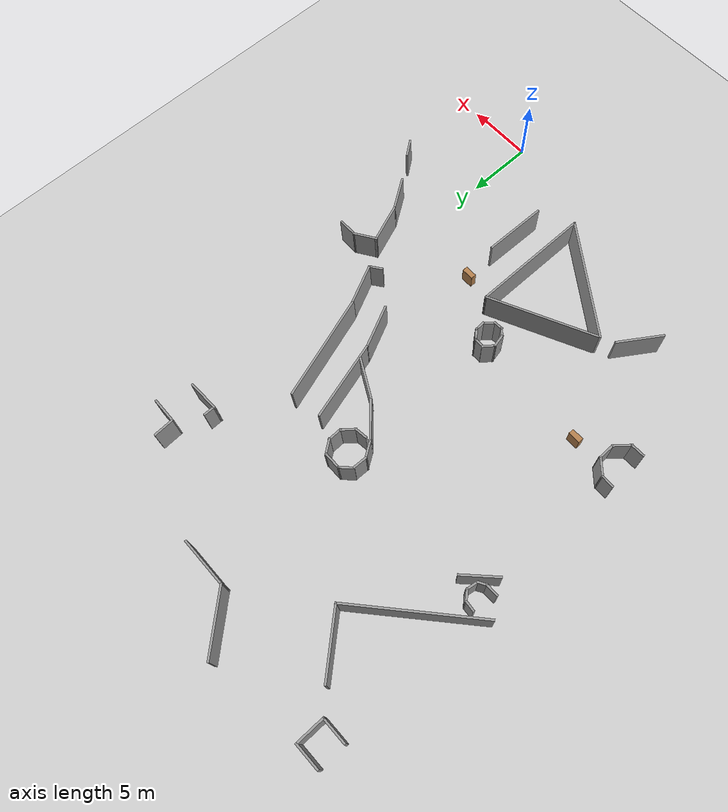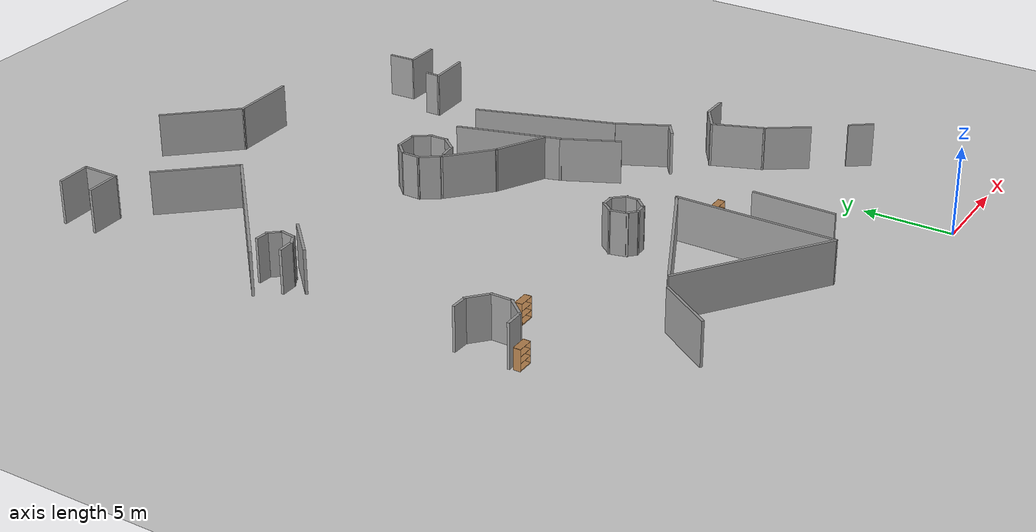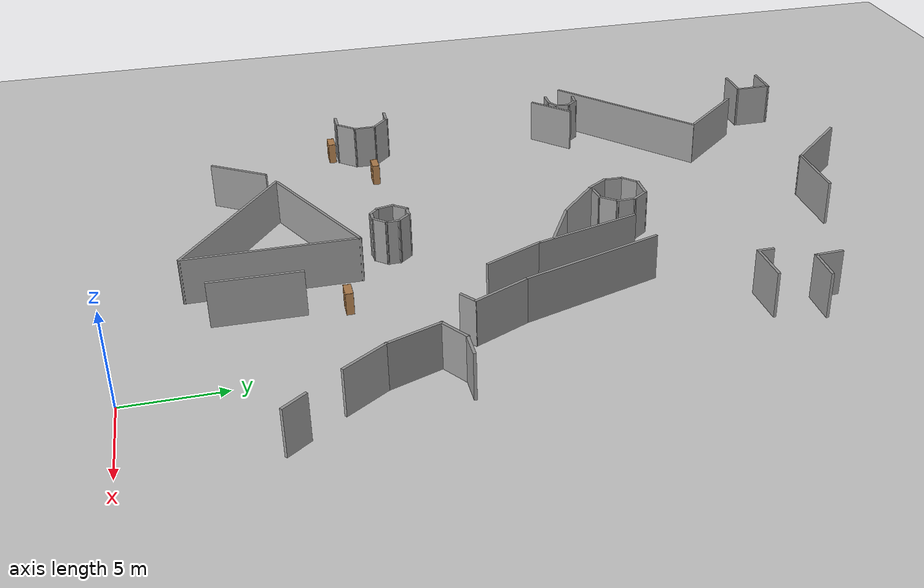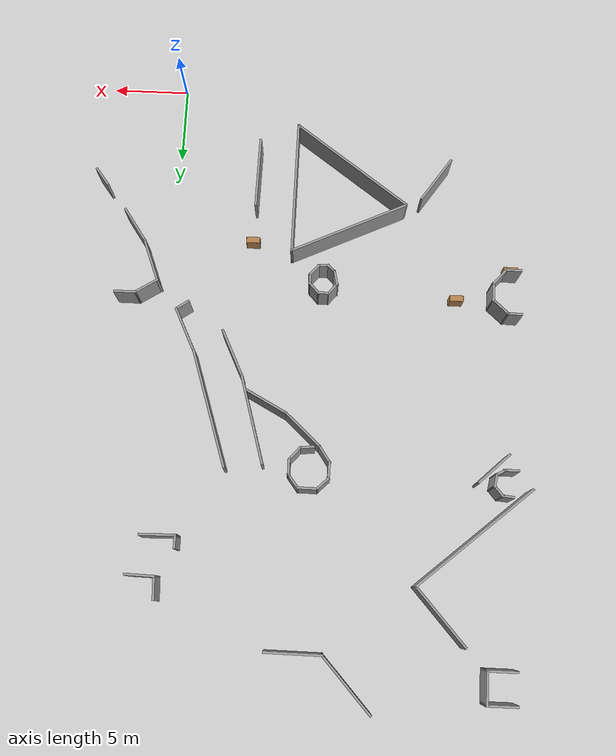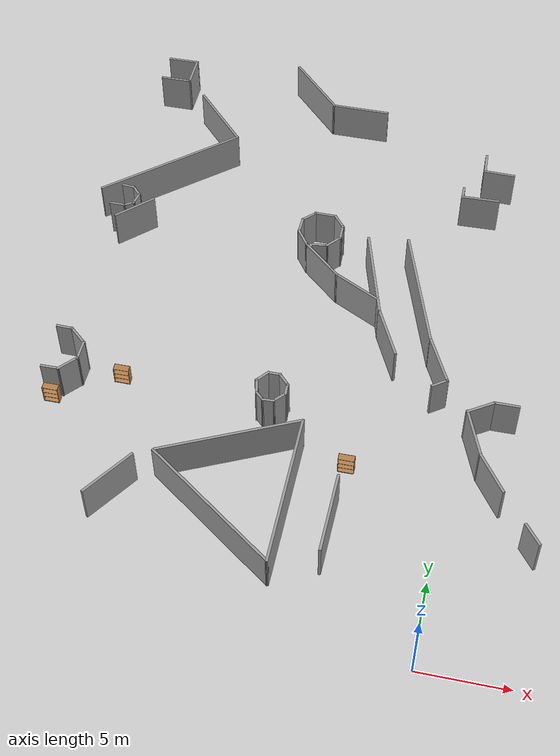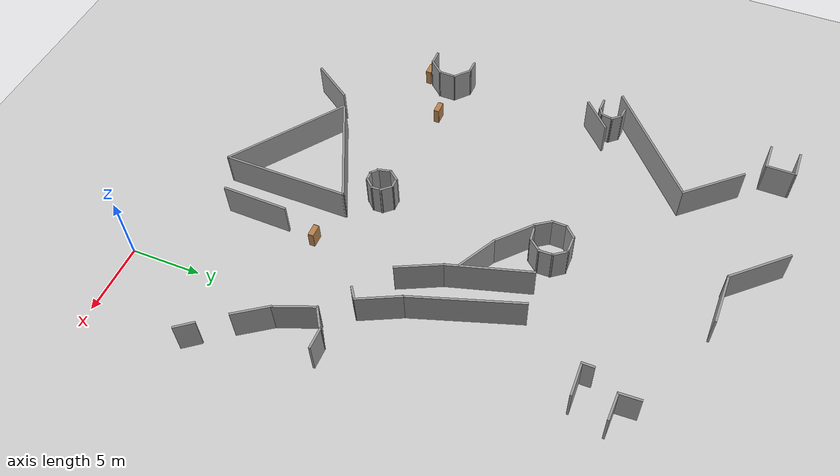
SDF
<sdf version="1.6">
 <world name="default">
  <model name="ground_plane">
   <static>1</static>
   <link name="link">
    <collision name="collision">
     <geometry><plane><normal>0 0 1</normal><size>100 100</size></plane></geometry>
     <surface><friction><ode><mu>100</mu><mu2>50</mu2></ode></friction></surface>
    </collision>
    <visual name="visual">
     <cast_shadows>0</cast_shadows>
     <geometry><plane><normal>0 0 1</normal><size>100 100</size></plane></geometry>
     <material>
      <script><uri>file://media/materials/scripts/gazebo.material</uri><name>Gazebo/Grey</name></script>
     </material>
    </visual>
   </link>
  </model>
  <model name="mall_new_reduce_size">
   <pose>-6.8092 7.5529 0 0 -0 0</pose>
   <link name="Wall_102">
    <collision name="Wall_102_Collision">
     <geometry><box><size>0.911014 0.15 2.5</size></box></geometry>
     <pose>0 0 1.25 0 -0 0</pose>
    </collision>
    <visual name="Wall_102_Visual">
     <pose>0 0 1.25 0 -0 0</pose>
     <geometry><box><size>0.911014 0.15 2.5</size></box></geometry>
     <material>
      <script><uri>file://media/materials/scripts/gazebo.material</uri><name>Gazebo/Grey</name></script>
      <ambient>1 1 1 1</ambient>
     </material>
     <meta><layer>0</layer></meta>
    </visual>
    <pose>5.13908 23.8484 0 0 -0 -1.5708</pose>
   </link>
   <link name="Wall_103">
    <collision name="Wall_103_Collision">
     <geometry><box><size>2.3915 0.15 2.5</size></box></geometry>
     <pose>0 0 1.25 0 -0 0</pose>
    </collision>
    <visual name="Wall_103_Visual">
     <pose>0 0 1.25 0 -0 0</pose>
     <geometry><box><size>2.3915 0.15 2.5</size></box></geometry>
     <material>
      <script><uri>file://media/materials/scripts/gazebo.material</uri><name>Gazebo/Grey</name></script>
      <ambient>1 1 1 1</ambient>
     </material>
     <meta><layer>0</layer></meta>
    </visual>
    <pose>6.25953 23.4864 0 0 -0 0.02316</pose>
   </link>
   <link name="Wall_126">
    <collision name="Wall_126_Collision">
     <geometry><box><size>1.5 0.15 2.5</size></box></geometry>
     <pose>0 0 1.25 0 -0 0</pose>
    </collision>
    <visual name="Wall_126_Visual">
     <pose>0 0 1.25 0 -0 0</pose>
     <geometry><box><size>1.5 0.15 2.5</size></box></geometry>
     <material>
      <script><uri>file://media/materials/scripts/gazebo.material</uri><name>Gazebo/Grey</name></script>
      <ambient>1 1 1 1</ambient>
     </material>
     <meta><layer>0</layer></meta>
    </visual>
    <pose>9.56035 7.86068 0 0 -0 3.14159</pose>
   </link>
   <link name="Wall_127">
    <collision name="Wall_127_Collision">
     <geometry><box><size>1.79669 0.15 2.5</size></box></geometry>
     <pose>0 0 1.25 0 -0 0</pose>
    </collision>
    <visual name="Wall_127_Visual">
     <pose>0 0 1.25 0 -0 0</pose>
     <geometry><box><size>1.79669 0.15 2.5</size></box></geometry>
     <material>
      <script><uri>file://media/materials/scripts/gazebo.material</uri><name>Gazebo/Grey</name></script>
      <ambient>1 1 1 1</ambient>
     </material>
     <meta><layer>0</layer></meta>
    </visual>
    <pose>8.19253 7.41582 0 0 -0 -2.57079</pose>
   </link>
   <link name="Wall_128">
    <collision name="Wall_128_Collision">
     <geometry><box><size>3.04987 0.15 2.5</size></box></geometry>
     <pose>0 0 1.25 0 -0 0</pose>
    </collision>
    <visual name="Wall_128_Visual">
     <pose>0 0 1.25 0 -0 0</pose>
     <geometry><box><size>3.04987 0.15 2.5</size></box></geometry>
     <material>
      <script><uri>file://media/materials/scripts/gazebo.material</uri><name>Gazebo/Grey</name></script>
      <ambient>1 1 1 1</ambient>
     </material>
     <meta><layer>0</layer></meta>
    </visual>
    <pose>8.01735 5.63901 0 0 -0 -1.20574</pose>
   </link>
   <link name="Wall_129">
    <collision name="Wall_129_Collision">
     <geometry><box><size>2.67124 0.15 2.5</size></box></geometry>
     <pose>0 0 1.25 0 -0 0</pose>
    </collision>
    <visual name="Wall_129_Visual">
     <pose>0 0 1.25 0 -0 0</pose>
     <geometry><box><size>2.67124 0.15 2.5</size></box></geometry>
     <material>
      <script><uri>file://media/materials/scripts/gazebo.material</uri><name>Gazebo/Grey</name></script>
      <ambient>1 1 1 1</ambient>
     </material>
     <meta><layer>0</layer></meta>
    </visual>
    <pose>9.25128 3.23607 0 0 -0 -0.966457</pose>
   </link>
   <link name="Wall_134">
    <collision name="Wall_134_Collision">
     <geometry><box><size>1.4429 0.15 2.5</size></box></geometry>
     <pose>0 0 1.25 0 -0 0</pose>
    </collision>
    <visual name="Wall_134_Visual">
     <pose>0 0 1.25 0 -0 0</pose>
     <geometry><box><size>1.4429 0.15 2.5</size></box></geometry>
     <material>
      <script><uri>file://media/materials/scripts/gazebo.material</uri><name>Gazebo/Grey</name></script>
      <ambient>1 1 1 1</ambient>
     </material>
     <meta><layer>0</layer></meta>
    </visual>
    <pose>11.7178 -0.065856 0 0 -0 -0.919284</pose>
   </link>
   <link name="Wall_245">
    <collision name="Wall_245_Collision">
     <geometry><box><size>4.70437 0.15 2.5</size></box></geometry>
     <pose>0 0 1.25 0 -0 0</pose>
    </collision>
    <visual name="Wall_245_Visual">
     <pose>0 0 1.25 0 -0 0</pose>
     <geometry><box><size>4.70437 0.15 2.5</size></box></geometry>
     <material>
      <script><uri>file://media/materials/scripts/gazebo.material</uri><name>Gazebo/Grey</name></script>
      <ambient>1 1 1 1</ambient>
     </material>
     <meta><layer>0</layer></meta>
    </visual>
    <pose>1.30808 -0.867008 0 0 -0 -1.58931</pose>
   </link>
   <link name="Wall_262">
    <collision name="Wall_262_Collision">
     <geometry><box><size>8.27755 0.15 2.5</size></box></geometry>
     <pose>0 0 1.25 0 -0 0</pose>
    </collision>
    <visual name="Wall_262_Visual">
     <pose>0 0 1.25 0 -0 0</pose>
     <geometry><box><size>8.27755 0.15 2.5</size></box></geometry>
     <material>
      <script><uri>file://media/materials/scripts/gazebo.material</uri><name>Gazebo/Grey</name></script>
      <ambient>1 1 1 1</ambient>
     </material>
     <meta><layer>0</layer></meta>
    </visual>
    <pose>-4.89745 2.80266 0 0 -0 0.439294</pose>
   </link>
   <link name="Wall_263">
    <collision name="Wall_263_Collision">
     <geometry><box><size>9.01306 0.15 2.5</size></box></geometry>
     <pose>0 0 1.25 0 -0 0</pose>
    </collision>
    <visual name="Wall_263_Visual">
     <pose>0 0 1.25 0 -0 0</pose>
     <geometry><box><size>9.01306 0.15 2.5</size></box></geometry>
     <material>
      <script><uri>file://media/materials/scripts/gazebo.material</uri><name>Gazebo/Grey</name></script>
      <ambient>1 1 1 1</ambient>
     </material>
     <meta><layer>0</layer></meta>
    </visual>
    <pose>-1.21952 0.09951 0 0 -0 -1.57583</pose>
   </link>
   <link name="Wall_264">
    <collision name="Wall_264_Collision">
     <geometry><box><size>9.26002 0.15 2.5</size></box></geometry>
     <pose>0 0 1.25 0 -0 0</pose>
    </collision>
    <visual name="Wall_264_Visual">
     <pose>0 0 1.25 0 -0 0</pose>
     <geometry><box><size>9.26002 0.15 2.5</size></box></geometry>
     <material>
      <script><uri>file://media/materials/scripts/gazebo.material</uri><name>Gazebo/Grey</name></script>
      <ambient>1 1 1 1</ambient>
     </material>
     <meta><layer>0</layer></meta>
    </visual>
    <pose>-4.95834 -1.66721 0 0 -0 2.51669</pose>
   </link>
   <link name="Wall_296">
    <collision name="Wall_296_Collision">
     <geometry><box><size>3.4822 0.15 2.5</size></box></geometry>
     <pose>0 0 1.25 0 -0 0</pose>
    </collision>
    <visual name="Wall_296_Visual">
     <pose>0 0 1.25 0 -0 0</pose>
     <geometry><box><size>3.4822 0.15 2.5</size></box></geometry>
     <material>
      <script><uri>file://media/materials/scripts/gazebo.material</uri><name>Gazebo/Grey</name></script>
      <ambient>1 1 1 1</ambient>
     </material>
     <meta><layer>0</layer></meta>
    </visual>
    <pose>-10.6311 -0.878716 0 0 -0 -2.16478</pose>
   </link>
   <link name="Wall_320">
    <collision name="Wall_320_Collision">
     <geometry><box><size>0.75 0.15 2.5</size></box></geometry>
     <pose>0 0 1.25 0 -0 0</pose>
    </collision>
    <visual name="Wall_320_Visual">
     <pose>0 0 1.25 0 -0 0</pose>
     <geometry><box><size>0.75 0.15 2.5</size></box></geometry>
     <material>
      <script><uri>file://media/materials/scripts/gazebo.material</uri><name>Gazebo/Grey</name></script>
      <ambient>1 1 1 1</ambient>
     </material>
     <meta><layer>0</layer></meta>
    </visual>
    <pose>-3.3723 7.36494 0 0 -0 0</pose>
   </link>
   <link name="Wall_321">
    <collision name="Wall_321_Collision">
     <geometry><box><size>0.996431 0.15 2.5</size></box></geometry>
     <pose>0 0 1.25 0 -0 0</pose>
    </collision>
    <visual name="Wall_321_Visual">
     <pose>0 0 1.25 0 -0 0</pose>
     <geometry><box><size>0.996431 0.15 2.5</size></box></geometry>
     <material>
      <script><uri>file://media/materials/scripts/gazebo.material</uri><name>Gazebo/Grey</name></script>
      <ambient>1 1 1 1</ambient>
     </material>
     <meta><layer>0</layer></meta>
    </visual>
    <pose>-2.78786 7.05157 0 0 -0 -0.833746</pose>
   </link>
   <link name="Wall_322">
    <collision name="Wall_322_Collision">
     <geometry><box><size>0.808487 0.15 2.5</size></box></geometry>
     <pose>0 0 1.25 0 -0 0</pose>
    </collision>
    <visual name="Wall_322_Visual">
     <pose>0 0 1.25 0 -0 0</pose>
     <geometry><box><size>0.808487 0.15 2.5</size></box></geometry>
     <material>
      <script><uri>file://media/materials/scripts/gazebo.material</uri><name>Gazebo/Grey</name></script>
      <ambient>1 1 1 1</ambient>
     </material>
     <meta><layer>0</layer></meta>
    </visual>
    <pose>-2.51788 6.42855 0 0 -0 -1.52686</pose>
   </link>
   <link name="Wall_323">
    <collision name="Wall_323_Collision">
     <geometry><box><size>0.955507 0.15 2.5</size></box></geometry>
     <pose>0 0 1.25 0 -0 0</pose>
    </collision>
    <visual name="Wall_323_Visual">
     <pose>0 0 1.25 0 -0 0</pose>
     <geometry><box><size>0.955507 0.15 2.5</size></box></geometry>
     <material>
      <script><uri>file://media/materials/scripts/gazebo.material</uri><name>Gazebo/Grey</name></script>
      <ambient>1 1 1 1</ambient>
     </material>
     <meta><layer>0</layer></meta>
    </visual>
    <pose>-2.77393 5.81089 0 0 -0 -2.30728</pose>
   </link>
   <link name="Wall_324">
    <collision name="Wall_324_Collision">
     <geometry><box><size>0.751238 0.15 2.5</size></box></geometry>
     <pose>0 0 1.25 0 -0 0</pose>
    </collision>
    <visual name="Wall_324_Visual">
     <pose>0 0 1.25 0 -0 0</pose>
     <geometry><box><size>0.751238 0.15 2.5</size></box></geometry>
     <material>
      <script><uri>file://media/materials/scripts/gazebo.material</uri><name>Gazebo/Grey</name></script>
      <ambient>1 1 1 1</ambient>
     </material>
     <meta><layer>0</layer></meta>
    </visual>
    <pose>-3.34446 5.48841 0 0 -0 -3.09342</pose>
   </link>
   <link name="Wall_325">
    <collision name="Wall_325_Collision">
     <geometry><box><size>0.725352 0.15 2.5</size></box></geometry>
     <pose>0 0 1.25 0 -0 0</pose>
    </collision>
    <visual name="Wall_325_Visual">
     <pose>0 0 1.25 0 -0 0</pose>
     <geometry><box><size>0.725352 0.15 2.5</size></box></geometry>
     <material>
      <script><uri>file://media/materials/scripts/gazebo.material</uri><name>Gazebo/Grey</name></script>
      <ambient>1 1 1 1</ambient>
     </material>
     <meta><layer>0</layer></meta>
    </visual>
    <pose>-3.85498 5.66037 0 0 -0 2.39175</pose>
   </link>
   <link name="Wall_326">
    <collision name="Wall_326_Collision">
     <geometry><box><size>1.06843 0.15 2.5</size></box></geometry>
     <pose>0 0 1.25 0 -0 0</pose>
    </collision>
    <visual name="Wall_326_Visual">
     <pose>0 0 1.25 0 -0 0</pose>
     <geometry><box><size>1.06843 0.15 2.5</size></box></geometry>
     <material>
      <script><uri>file://media/materials/scripts/gazebo.material</uri><name>Gazebo/Grey</name></script>
      <ambient>1 1 1 1</ambient>
     </material>
     <meta><layer>0</layer></meta>
    </visual>
    <pose>-4.18171 6.28601 0 0 -0 1.78347</pose>
   </link>
   <link name="Wall_327">
    <collision name="Wall_327_Collision">
     <geometry><box><size>0.999026 0.15 2.5</size></box></geometry>
     <pose>0 0 1.25 0 -0 0</pose>
    </collision>
    <visual name="Wall_327_Visual">
     <pose>0 0 1.25 0 -0 0</pose>
     <geometry><box><size>0.999026 0.15 2.5</size></box></geometry>
     <material>
      <script><uri>file://media/materials/scripts/gazebo.material</uri><name>Gazebo/Grey</name></script>
      <ambient>1 1 1 1</ambient>
     </material>
     <meta><layer>0</layer></meta>
    </visual>
    <pose>-4.0137 7.04728 0 0 -0 0.8968</pose>
   </link>
   <link name="Wall_330">
    <collision name="Wall_330_Collision">
     <geometry><box><size>1.01977 0.15 2.5</size></box></geometry>
     <pose>0 0 1.25 0 -0 0</pose>
    </collision>
    <visual name="Wall_330_Visual">
     <pose>0 0 1.25 0 -0 0</pose>
     <geometry><box><size>1.01977 0.15 2.5</size></box></geometry>
     <material>
      <script><uri>file://media/materials/scripts/gazebo.material</uri><name>Gazebo/Grey</name></script>
      <ambient>1 1 1 1</ambient>
     </material>
     <meta><layer>0</layer></meta>
    </visual>
    <pose>-15.936 8.2086 0 0 -0 -0.033263</pose>
   </link>
   <link name="Wall_331">
    <collision name="Wall_331_Collision">
     <geometry><box><size>1.45443 0.15 2.5</size></box></geometry>
     <pose>0 0 1.25 0 -0 0</pose>
    </collision>
    <visual name="Wall_331_Visual">
     <pose>0 0 1.25 0 -0 0</pose>
     <geometry><box><size>1.45443 0.15 2.5</size></box></geometry>
     <material>
      <script><uri>file://media/materials/scripts/gazebo.material</uri><name>Gazebo/Grey</name></script>
      <ambient>1 1 1 1</ambient>
     </material>
     <meta><layer>0</layer></meta>
    </visual>
    <pose>-15.0144 7.76987 0 0 -0 -0.727873</pose>
   </link>
   <link name="Wall_332">
    <collision name="Wall_332_Collision">
     <geometry><box><size>1.29894 0.15 2.5</size></box></geometry>
     <pose>0 0 1.25 0 -0 0</pose>
    </collision>
    <visual name="Wall_332_Visual">
     <pose>0 0 1.25 0 -0 0</pose>
     <geometry><box><size>1.29894 0.15 2.5</size></box></geometry>
     <material>
      <script><uri>file://media/materials/scripts/gazebo.material</uri><name>Gazebo/Grey</name></script>
      <ambient>1 1 1 1</ambient>
     </material>
     <meta><layer>0</layer></meta>
    </visual>
    <pose>-14.5323 6.75187 0 0 -0 -1.57919</pose>
   </link>
   <link name="Wall_333">
    <collision name="Wall_333_Collision">
     <geometry><box><size>1.40407 0.15 2.5</size></box></geometry>
     <pose>0 0 1.25 0 -0 0</pose>
    </collision>
    <visual name="Wall_333_Visual">
     <pose>0 0 1.25 0 -0 0</pose>
     <geometry><box><size>1.40407 0.15 2.5</size></box></geometry>
     <material>
      <script><uri>file://media/materials/scripts/gazebo.material</uri><name>Gazebo/Grey</name></script>
      <ambient>1 1 1 1</ambient>
     </material>
     <meta><layer>0</layer></meta>
    </visual>
    <pose>-14.9612 5.70636 0 0 -0 -2.29237</pose>
   </link>
   <link name="Wall_334">
    <collision name="Wall_334_Collision">
     <geometry><box><size>1.10611 0.15 2.5</size></box></geometry>
     <pose>0 0 1.25 0 -0 0</pose>
    </collision>
    <visual name="Wall_334_Visual">
     <pose>0 0 1.25 0 -0 0</pose>
     <geometry><box><size>1.10611 0.15 2.5</size></box></geometry>
     <material>
      <script><uri>file://media/materials/scripts/gazebo.material</uri><name>Gazebo/Grey</name></script>
      <ambient>1 1 1 1</ambient>
     </material>
     <meta><layer>0</layer></meta>
    </visual>
    <pose>-15.8537 5.24013 0 0 -0 -3.13151</pose>
   </link>
   <link name="Wall_46">
    <collision name="Wall_46_Collision">
     <geometry><box><size>2 0.15 2.5</size></box></geometry>
     <pose>0 0 1.25 0 -0 0</pose>
    </collision>
    <visual name="Wall_46_Visual">
     <pose>0 0 1.25 0 -0 0</pose>
     <geometry><box><size>2 0.15 2.5</size></box></geometry>
     <material>
      <script><uri>file://media/materials/scripts/gazebo.material</uri><name>Gazebo/Grey</name></script>
      <ambient>1 1 1 1</ambient>
     </material>
     <meta><layer>0</layer></meta>
    </visual>
    <pose>-15.322 30.7375 0 0 -0 0</pose>
   </link>
   <link name="Wall_47">
    <collision name="Wall_47_Collision">
     <geometry><box><size>2.17492 0.15 2.5</size></box></geometry>
     <pose>0 0 1.25 0 -0 0</pose>
    </collision>
    <visual name="Wall_47_Visual">
     <pose>0 0 1.25 0 -0 0</pose>
     <geometry><box><size>2.17492 0.15 2.5</size></box></geometry>
     <material>
      <script><uri>file://media/materials/scripts/gazebo.material</uri><name>Gazebo/Grey</name></script>
      <ambient>1 1 1 1</ambient>
     </material>
     <meta><layer>0</layer></meta>
    </visual>
    <pose>-14.3927 31.7499 0 0 -0 1.56648</pose>
   </link>
   <link name="Wall_48">
    <collision name="Wall_48_Collision">
     <geometry><box><size>2.0172 0.15 2.5</size></box></geometry>
     <pose>0 0 1.25 0 -0 0</pose>
    </collision>
    <visual name="Wall_48_Visual">
     <pose>0 0 1.25 0 -0 0</pose>
     <geometry><box><size>2.0172 0.15 2.5</size></box></geometry>
     <material>
      <script><uri>file://media/materials/scripts/gazebo.material</uri><name>Gazebo/Grey</name></script>
      <ambient>1 1 1 1</ambient>
     </material>
     <meta><layer>0</layer></meta>
    </visual>
    <pose>-15.3219 32.7668 0 0 -0 -3.13691</pose>
   </link>
   <link name="Wall_53">
    <collision name="Wall_53_Collision">
     <geometry><box><size>4.7206 0.15 2.5</size></box></geometry>
     <pose>0 0 1.25 0 -0 0</pose>
    </collision>
    <visual name="Wall_53_Visual">
     <pose>0 0 1.25 0 -0 0</pose>
     <geometry><box><size>4.7206 0.15 2.5</size></box></geometry>
     <material>
      <script><uri>file://media/materials/scripts/gazebo.material</uri><name>Gazebo/Grey</name></script>
      <ambient>1 1 1 1</ambient>
     </material>
     <meta><layer>0</layer></meta>
    </visual>
    <pose>-5.84483 31.9838 0 0 -0 -0.834461</pose>
   </link>
   <link name="Wall_54">
    <collision name="Wall_54_Collision">
     <geometry><box><size>3.72999 0.15 2.5</size></box></geometry>
     <pose>0 0 1.25 0 -0 0</pose>
    </collision>
    <visual name="Wall_54_Visual">
     <pose>0 0 1.25 0 -0 0</pose>
     <geometry><box><size>3.72999 0.15 2.5</size></box></geometry>
     <material>
      <script><uri>file://media/materials/scripts/gazebo.material</uri><name>Gazebo/Grey</name></script>
      <ambient>1 1 1 1</ambient>
     </material>
     <meta><layer>0</layer></meta>
    </visual>
    <pose>-2.53762 30.2774 0 0 -0 -0.007328</pose>
   </link>
   <link name="Wall_58">
    <collision name="Wall_58_Collision">
     <geometry><box><size>4.86048 0.15 2.5</size></box></geometry>
     <pose>0 0 1.25 0 -0 0</pose>
    </collision>
    <visual name="Wall_58_Visual">
     <pose>0 0 1.25 0 -0 0</pose>
     <geometry><box><size>4.86048 0.15 2.5</size></box></geometry>
     <material>
      <script><uri>file://media/materials/scripts/gazebo.material</uri><name>Gazebo/Grey</name></script>
      <ambient>1 1 1 1</ambient>
     </material>
     <meta><layer>0</layer></meta>
    </visual>
    <pose>-11.5025 27.6865 0 0 -0 -0.844353</pose>
   </link>
   <link name="Wall_59">
    <collision name="Wall_59_Collision">
     <geometry><box><size>9.7239 0.15 2.5</size></box></geometry>
     <pose>0 0 1.25 0 -0 0</pose>
    </collision>
    <visual name="Wall_59_Visual">
     <pose>0 0 1.25 0 -0 0</pose>
     <geometry><box><size>9.7239 0.15 2.5</size></box></geometry>
     <material>
      <script><uri>file://media/materials/scripts/gazebo.material</uri><name>Gazebo/Grey</name></script>
      <ambient>1 1 1 1</ambient>
     </material>
     <meta><layer>0</layer></meta>
    </visual>
    <pose>-13.5451 22.7671 0 0 -0 -2.42416</pose>
   </link>
   <link name="Wall_63">
    <collision name="Wall_63_Collision">
     <geometry><box><size>2.76682 0.15 2.5</size></box></geometry>
     <pose>0 0 1.25 0 -0 0</pose>
    </collision>
    <visual name="Wall_63_Visual">
     <pose>0 0 1.25 0 -0 0</pose>
     <geometry><box><size>2.76682 0.15 2.5</size></box></geometry>
     <material>
      <script><uri>file://media/materials/scripts/gazebo.material</uri><name>Gazebo/Grey</name></script>
      <ambient>1 1 1 1</ambient>
     </material>
     <meta><layer>0</layer></meta>
    </visual>
    <pose>-14.7009 18.3877 0 0 -0 0.766646</pose>
   </link>
   <link name="Wall_66">
    <collision name="Wall_66_Collision">
     <geometry><box><size>1 0.15 2.5</size></box></geometry>
     <pose>0 0 1.25 0 -0 0</pose>
    </collision>
    <visual name="Wall_66_Visual">
     <pose>0 0 1.25 0 -0 0</pose>
     <geometry><box><size>1 0.15 2.5</size></box></geometry>
     <material>
      <script><uri>file://media/materials/scripts/gazebo.material</uri><name>Gazebo/Grey</name></script>
      <ambient>1 1 1 1</ambient>
     </material>
     <meta><layer>0</layer></meta>
    </visual>
    <pose>-15.806 18.4495 0 0 -0 0</pose>
   </link>
   <link name="Wall_67">
    <collision name="Wall_67_Collision">
     <geometry><box><size>0.75 0.15 2.5</size></box></geometry>
     <pose>0 0 1.25 0 -0 0</pose>
    </collision>
    <visual name="Wall_67_Visual">
     <pose>0 0 1.25 0 -0 0</pose>
     <geometry><box><size>0.75 0.15 2.5</size></box></geometry>
     <material>
      <script><uri>file://media/materials/scripts/gazebo.material</uri><name>Gazebo/Grey</name></script>
      <ambient>1 1 1 1</ambient>
     </material>
     <meta><layer>0</layer></meta>
    </visual>
    <pose>-15.1212 18.5995 0 0 -0 0.523599</pose>
   </link>
   <link name="Wall_68">
    <collision name="Wall_68_Collision">
     <geometry><box><size>0.923783 0.15 2.5</size></box></geometry>
     <pose>0 0 1.25 0 -0 0</pose>
    </collision>
    <visual name="Wall_68_Visual">
     <pose>0 0 1.25 0 -0 0</pose>
     <geometry><box><size>0.923783 0.15 2.5</size></box></geometry>
     <material>
      <script><uri>file://media/materials/scripts/gazebo.material</uri><name>Gazebo/Grey</name></script>
      <ambient>1 1 1 1</ambient>
     </material>
     <meta><layer>0</layer></meta>
    </visual>
    <pose>-14.7977 19.1311 0 0 -0 1.4053</pose>
   </link>
   <link name="Wall_69">
    <collision name="Wall_69_Collision">
     <geometry><box><size>0.920137 0.15 2.5</size></box></geometry>
     <pose>0 0 1.25 0 -0 0</pose>
    </collision>
    <visual name="Wall_69_Visual">
     <pose>0 0 1.25 0 -0 0</pose>
     <geometry><box><size>0.920137 0.15 2.5</size></box></geometry>
     <material>
      <script><uri>file://media/materials/scripts/gazebo.material</uri><name>Gazebo/Grey</name></script>
      <ambient>1 1 1 1</ambient>
     </material>
     <meta><layer>0</layer></meta>
    </visual>
    <pose>-14.9845 19.7936 0 0 -0 2.27931</pose>
   </link>
   <link name="Wall_70">
    <collision name="Wall_70_Collision">
     <geometry><box><size>0.82206 0.15 2.5</size></box></geometry>
     <pose>0 0 1.25 0 -0 0</pose>
    </collision>
    <visual name="Wall_70_Visual">
     <pose>0 0 1.25 0 -0 0</pose>
     <geometry><box><size>0.82206 0.15 2.5</size></box></geometry>
     <material>
      <script><uri>file://media/materials/scripts/gazebo.material</uri><name>Gazebo/Grey</name></script>
      <ambient>1 1 1 1</ambient>
     </material>
     <meta><layer>0</layer></meta>
    </visual>
    <pose>-15.581 20.1082 0 0 -0 3.04075</pose>
   </link>
   <link name="Wall_75">
    <collision name="Wall_75_Collision">
     <geometry><box><size>0.996724 0.15 2.5</size></box></geometry>
     <pose>0 0 1.25 0 -0 0</pose>
    </collision>
    <visual name="Wall_75_Visual">
     <pose>0 0 1.25 0 -0 0</pose>
     <geometry><box><size>0.996724 0.15 2.5</size></box></geometry>
     <material>
      <script><uri>file://media/materials/scripts/gazebo.material</uri><name>Gazebo/Grey</name></script>
      <ambient>1 1 1 1</ambient>
     </material>
     <meta><layer>0</layer></meta>
    </visual>
    <pose>-2.811 17.5721 0 0 -0 0.113209</pose>
   </link>
   <link name="Wall_76">
    <collision name="Wall_76_Collision">
     <geometry><box><size>1.17578 0.15 2.5</size></box></geometry>
     <pose>0 0 1.25 0 -0 0</pose>
    </collision>
    <visual name="Wall_76_Visual">
     <pose>0 0 1.25 0 -0 0</pose>
     <geometry><box><size>1.17578 0.15 2.5</size></box></geometry>
     <material>
      <script><uri>file://media/materials/scripts/gazebo.material</uri><name>Gazebo/Grey</name></script>
      <ambient>1 1 1 1</ambient>
     </material>
     <meta><layer>0</layer></meta>
    </visual>
    <pose>-2.042 18.0205 0 0 -0 0.869416</pose>
   </link>
   <link name="Wall_77">
    <collision name="Wall_77_Collision">
     <geometry><box><size>1.10885 0.15 2.5</size></box></geometry>
     <pose>0 0 1.25 0 -0 0</pose>
    </collision>
    <visual name="Wall_77_Visual">
     <pose>0 0 1.25 0 -0 0</pose>
     <geometry><box><size>1.10885 0.15 2.5</size></box></geometry>
     <material>
      <script><uri>file://media/materials/scripts/gazebo.material</uri><name>Gazebo/Grey</name></script>
      <ambient>1 1 1 1</ambient>
     </material>
     <meta><layer>0</layer></meta>
    </visual>
    <pose>-1.71974 18.8742 0 0 -0 1.58893</pose>
   </link>
   <link name="Wall_78">
    <collision name="Wall_78_Collision">
     <geometry><box><size>1.20591 0.15 2.5</size></box></geometry>
     <pose>0 0 1.25 0 -0 0</pose>
    </collision>
    <visual name="Wall_78_Visual">
     <pose>0 0 1.25 0 -0 0</pose>
     <geometry><box><size>1.20591 0.15 2.5</size></box></geometry>
     <material>
      <script><uri>file://media/materials/scripts/gazebo.material</uri><name>Gazebo/Grey</name></script>
      <ambient>1 1 1 1</ambient>
     </material>
     <meta><layer>0</layer></meta>
    </visual>
    <pose>-2.02604 19.7599 0 0 -0 2.2101</pose>
   </link>
   <link name="Wall_79">
    <collision name="Wall_79_Collision">
     <geometry><box><size>1.36534 0.15 2.5</size></box></geometry>
     <pose>0 0 1.25 0 -0 0</pose>
    </collision>
    <visual name="Wall_79_Visual">
     <pose>0 0 1.25 0 -0 0</pose>
     <geometry><box><size>1.36534 0.15 2.5</size></box></geometry>
     <material>
      <script><uri>file://media/materials/scripts/gazebo.material</uri><name>Gazebo/Grey</name></script>
      <ambient>1 1 1 1</ambient>
     </material>
     <meta><layer>0</layer></meta>
    </visual>
    <pose>-2.95734 20.1705 0 0 -0 3.13444</pose>
   </link>
   <link name="Wall_80">
    <collision name="Wall_80_Collision">
     <geometry><box><size>1.1209 0.15 2.5</size></box></geometry>
     <pose>0 0 1.25 0 -0 0</pose>
    </collision>
    <visual name="Wall_80_Visual">
     <pose>0 0 1.25 0 -0 0</pose>
     <geometry><box><size>1.1209 0.15 2.5</size></box></geometry>
     <material>
      <script><uri>file://media/materials/scripts/gazebo.material</uri><name>Gazebo/Grey</name></script>
      <ambient>1 1 1 1</ambient>
     </material>
     <meta><layer>0</layer></meta>
    </visual>
    <pose>-3.91038 19.8251 0 0 -0 -2.36253</pose>
   </link>
   <link name="Wall_81">
    <collision name="Wall_81_Collision">
     <geometry><box><size>1.11992 0.15 2.5</size></box></geometry>
     <pose>0 0 1.25 0 -0 0</pose>
    </collision>
    <visual name="Wall_81_Visual">
     <pose>0 0 1.25 0 -0 0</pose>
     <geometry><box><size>1.11992 0.15 2.5</size></box></geometry>
     <material>
      <script><uri>file://media/materials/scripts/gazebo.material</uri><name>Gazebo/Grey</name></script>
      <ambient>1 1 1 1</ambient>
     </material>
     <meta><layer>0</layer></meta>
    </visual>
    <pose>-4.26885 18.9471 0 0 -0 -1.5977</pose>
   </link>
   <link name="Wall_82">
    <collision name="Wall_82_Collision">
     <geometry><box><size>1.37559 0.15 2.5</size></box></geometry>
     <pose>0 0 1.25 0 -0 0</pose>
    </collision>
    <visual name="Wall_82_Visual">
     <pose>0 0 1.25 0 -0 0</pose>
     <geometry><box><size>1.37559 0.15 2.5</size></box></geometry>
     <material>
      <script><uri>file://media/materials/scripts/gazebo.material</uri><name>Gazebo/Grey</name></script>
      <ambient>1 1 1 1</ambient>
     </material>
     <meta><layer>0</layer></meta>
    </visual>
    <pose>-3.93733 17.9642 0 0 -0 -0.973652</pose>
   </link>
   <link name="Wall_83">
    <collision name="Wall_83_Collision">
     <geometry><box><size>3.17702 0.15 2.5</size></box></geometry>
     <pose>0 0 1.25 0 -0 0</pose>
    </collision>
    <visual name="Wall_83_Visual">
     <pose>0 0 1.25 0 -0 0</pose>
     <geometry><box><size>3.17702 0.15 2.5</size></box></geometry>
     <material>
      <script><uri>file://media/materials/scripts/gazebo.material</uri><name>Gazebo/Grey</name></script>
      <ambient>1 1 1 1</ambient>
     </material>
     <meta><layer>0</layer></meta>
    </visual>
    <pose>-2.47787 16.4426 0 0 -0 -0.742728</pose>
   </link>
   <link name="Wall_84">
    <collision name="Wall_84_Collision">
     <geometry><box><size>3.09961 0.15 2.5</size></box></geometry>
     <pose>0 0 1.25 0 -0 0</pose>
    </collision>
    <visual name="Wall_84_Visual">
     <pose>0 0 1.25 0 -0 0</pose>
     <geometry><box><size>3.09961 0.15 2.5</size></box></geometry>
     <material>
      <script><uri>file://media/materials/scripts/gazebo.material</uri><name>Gazebo/Grey</name></script>
      <ambient>1 1 1 1</ambient>
     </material>
     <meta><layer>0</layer></meta>
    </visual>
    <pose>-0.052404 14.7261 0 0 -0 -0.489119</pose>
   </link>
   <link name="Wall_87">
    <collision name="Wall_87_Collision">
     <geometry><box><size>5.96136 0.15 2.5</size></box></geometry>
     <pose>0 0 1.25 0 -0 0</pose>
    </collision>
    <visual name="Wall_87_Visual">
     <pose>0 0 1.25 0 -0 0</pose>
     <geometry><box><size>5.96136 0.15 2.5</size></box></geometry>
     <material>
      <script><uri>file://media/materials/scripts/gazebo.material</uri><name>Gazebo/Grey</name></script>
      <ambient>1 1 1 1</ambient>
     </material>
     <meta><layer>0</layer></meta>
    </visual>
    <pose>0.791494 15.9362 0 0 -0 -1.29247</pose>
   </link>
   <link name="Wall_88">
    <collision name="Wall_88_Collision">
     <geometry><box><size>3.37715 0.15 2.5</size></box></geometry>
     <pose>0 0 1.25 0 -0 0</pose>
    </collision>
    <visual name="Wall_88_Visual">
     <pose>0 0 1.25 0 -0 0</pose>
     <geometry><box><size>3.37715 0.15 2.5</size></box></geometry>
     <material>
      <script><uri>file://media/materials/scripts/gazebo.material</uri><name>Gazebo/Grey</name></script>
      <ambient>1 1 1 1</ambient>
     </material>
     <meta><layer>0</layer></meta>
    </visual>
    <pose>2.28271 11.662 0 0 -0 -1.12695</pose>
   </link>
   <link name="Wall_91">
    <collision name="Wall_91_Collision">
     <geometry><box><size>7.96646 0.15 2.5</size></box></geometry>
     <pose>0 0 1.25 0 -0 0</pose>
    </collision>
    <visual name="Wall_91_Visual">
     <pose>0 0 1.25 0 -0 0</pose>
     <geometry><box><size>7.96646 0.15 2.5</size></box></geometry>
     <material>
      <script><uri>file://media/materials/scripts/gazebo.material</uri><name>Gazebo/Grey</name></script>
      <ambient>1 1 1 1</ambient>
     </material>
     <meta><layer>0</layer></meta>
    </visual>
    <pose>3.59702 15.3339 0 0 -0 -1.25918</pose>
   </link>
   <link name="Wall_92">
    <collision name="Wall_92_Collision">
     <geometry><box><size>3.15983 0.15 2.5</size></box></geometry>
     <pose>0 0 1.25 0 -0 0</pose>
    </collision>
    <visual name="Wall_92_Visual">
     <pose>0 0 1.25 0 -0 0</pose>
     <geometry><box><size>3.15983 0.15 2.5</size></box></geometry>
     <material>
      <script><uri>file://media/materials/scripts/gazebo.material</uri><name>Gazebo/Grey</name></script>
      <ambient>1 1 1 1</ambient>
     </material>
     <meta><layer>0</layer></meta>
    </visual>
    <pose>5.46962 10.2341 0 0 -0 -1.12329</pose>
   </link>
   <link name="Wall_93">
    <collision name="Wall_93_Collision">
     <geometry><box><size>1.06714 0.15 2.5</size></box></geometry>
     <pose>0 0 1.25 0 -0 0</pose>
    </collision>
    <visual name="Wall_93_Visual">
     <pose>0 0 1.25 0 -0 0</pose>
     <geometry><box><size>1.06714 0.15 2.5</size></box></geometry>
     <material>
      <script><uri>file://media/materials/scripts/gazebo.material</uri><name>Gazebo/Grey</name></script>
      <ambient>1 1 1 1</ambient>
     </material>
     <meta><layer>0</layer></meta>
    </visual>
    <pose>5.74679 8.59882 0 0 -0 -2.52467</pose>
   </link>
   <link name="Wall_96">
    <collision name="Wall_96_Collision">
     <geometry><box><size>1.56057 0.15 2.5</size></box></geometry>
     <pose>0 0 1.25 0 -0 0</pose>
    </collision>
    <visual name="Wall_96_Visual">
     <pose>0 0 1.25 0 -0 0</pose>
     <geometry><box><size>1.56057 0.15 2.5</size></box></geometry>
     <material>
      <script><uri>file://media/materials/scripts/gazebo.material</uri><name>Gazebo/Grey</name></script>
      <ambient>1 1 1 1</ambient>
     </material>
     <meta><layer>0</layer></meta>
    </visual>
    <pose>6.23658 26.75 0 0 -0 -1.52873</pose>
   </link>
   <link name="Wall_97">
    <collision name="Wall_97_Collision">
     <geometry><box><size>1.97301 0.15 2.5</size></box></geometry>
     <pose>0 0 1.25 0 -0 0</pose>
    </collision>
    <visual name="Wall_97_Visual">
     <pose>0 0 1.25 0 -0 0</pose>
     <geometry><box><size>1.97301 0.15 2.5</size></box></geometry>
     <material>
      <script><uri>file://media/materials/scripts/gazebo.material</uri><name>Gazebo/Grey</name></script>
      <ambient>1 1 1 1</ambient>
     </material>
     <meta><layer>0</layer></meta>
    </visual>
    <pose>7.17748 26.0156 0 0 -0 -0.024409</pose>
   </link>
   <static>1</static>
  </model>
  <model name="bookshelf_15">
   <static>1</static>
   <link name="link">
    <inertial><mass>1</mass></inertial>
    <collision name="back">
     <pose>0 0.005 0.6 0 -0 0</pose>
     <geometry><box><size>0.9 0.01 1.2</size></box></geometry>
    </collision>
    <visual name="visual1">
     <pose>0 0.005 0.6 0 -0 0</pose>
     <geometry><box><size>0.9 0.01 1.2</size></box></geometry>
     <material>
      <script><uri>file://media/materials/scripts/gazebo.material</uri><name>Gazebo/Wood</name></script>
     </material>
    </visual>
    <collision name="left_side">
     <pose>0.45 -0.195 0.6 0 -0 0</pose>
     <geometry><box><size>0.02 0.4 1.2</size></box></geometry>
    </collision>
    <visual name="visual2">
     <pose>0.45 -0.195 0.6 0 -0 0</pose>
     <geometry><box><size>0.02 0.4 1.2</size></box></geometry>
     <material>
      <script><uri>file://media/materials/scripts/gazebo.material</uri><name>Gazebo/Wood</name></script>
     </material>
    </visual>
    <collision name="right_side">
     <pose>-0.45 -0.195 0.6 0 -0 0</pose>
     <geometry><box><size>0.02 0.4 1.2</size></box></geometry>
    </collision>
    <visual name="visual3">
     <pose>-0.45 -0.195 0.6 0 -0 0</pose>
     <geometry><box><size>0.02 0.4 1.2</size></box></geometry>
     <material>
      <script><uri>file://media/materials/scripts/gazebo.material</uri><name>Gazebo/Wood</name></script>
     </material>
    </visual>
    <collision name="bottom">
     <pose>0 -0.195 0.03 0 -0 0</pose>
     <geometry><box><size>0.88 0.4 0.06</size></box></geometry>
    </collision>
    <visual name="visual4">
     <pose>0 -0.195 0.03 0 -0 0</pose>
     <geometry><box><size>0.88 0.4 0.06</size></box></geometry>
     <material>
      <script><uri>file://media/materials/scripts/gazebo.material</uri><name>Gazebo/Wood</name></script>
     </material>
    </visual>
    <collision name="top">
     <pose>0 -0.195 1.19 0 -0 0</pose>
     <geometry><box><size>0.88 0.4 0.02</size></box></geometry>
    </collision>
    <visual name="visual5">
     <pose>0 -0.195 1.19 0 -0 0</pose>
     <geometry><box><size>0.88 0.4 0.02</size></box></geometry>
     <material>
      <script><uri>file://media/materials/scripts/gazebo.material</uri><name>Gazebo/Wood</name></script>
     </material>
    </visual>
    <collision name="low_shelf">
     <pose>0 -0.195 0.43 0 -0 0</pose>
     <geometry><box><size>0.88 0.4 0.02</size></box></geometry>
    </collision>
    <visual name="visual6">
     <pose>0 -0.195 0.43 0 -0 0</pose>
     <geometry><box><size>0.88 0.4 0.02</size></box></geometry>
     <material>
      <script><uri>file://media/materials/scripts/gazebo.material</uri><name>Gazebo/Wood</name></script>
     </material>
    </visual>
    <collision name="high_shelf">
     <pose>0 -0.195 0.8 0 -0 0</pose>
     <geometry><box><size>0.88 0.4 0.02</size></box></geometry>
    </collision>
    <visual name="visual7">
     <pose>0 -0.195 0.8 0 -0 0</pose>
     <geometry><box><size>0.88 0.4 0.02</size></box></geometry>
     <material>
      <script><uri>file://media/materials/scripts/gazebo.material</uri><name>Gazebo/Wood</name></script>
     </material>
    </visual>
   </link>
   <pose>-19.1048 14.6968 0 0 -0 0</pose>
  </model>
  <model name="bookshelf_16">
   <static>1</static>
   <link name="link">
    <inertial><mass>1</mass></inertial>
    <collision name="back">
     <pose>0 0.005 0.6 0 -0 0</pose>
     <geometry><box><size>0.9 0.01 1.2</size></box></geometry>
    </collision>
    <visual name="visual1">
     <pose>0 0.005 0.6 0 -0 0</pose>
     <geometry><box><size>0.9 0.01 1.2</size></box></geometry>
     <material>
      <script><uri>file://media/materials/scripts/gazebo.material</uri><name>Gazebo/Wood</name></script>
     </material>
    </visual>
    <collision name="left_side">
     <pose>0.45 -0.195 0.6 0 -0 0</pose>
     <geometry><box><size>0.02 0.4 1.2</size></box></geometry>
    </collision>
    <visual name="visual2">
     <pose>0.45 -0.195 0.6 0 -0 0</pose>
     <geometry><box><size>0.02 0.4 1.2</size></box></geometry>
     <material>
      <script><uri>file://media/materials/scripts/gazebo.material</uri><name>Gazebo/Wood</name></script>
     </material>
    </visual>
    <collision name="right_side">
     <pose>-0.45 -0.195 0.6 0 -0 0</pose>
     <geometry><box><size>0.02 0.4 1.2</size></box></geometry>
    </collision>
    <visual name="visual3">
     <pose>-0.45 -0.195 0.6 0 -0 0</pose>
     <geometry><box><size>0.02 0.4 1.2</size></box></geometry>
     <material>
      <script><uri>file://media/materials/scripts/gazebo.material</uri><name>Gazebo/Wood</name></script>
     </material>
    </visual>
    <collision name="bottom">
     <pose>0 -0.195 0.03 0 -0 0</pose>
     <geometry><box><size>0.88 0.4 0.06</size></box></geometry>
    </collision>
    <visual name="visual4">
     <pose>0 -0.195 0.03 0 -0 0</pose>
     <geometry><box><size>0.88 0.4 0.06</size></box></geometry>
     <material>
      <script><uri>file://media/materials/scripts/gazebo.material</uri><name>Gazebo/Wood</name></script>
     </material>
    </visual>
    <collision name="top">
     <pose>0 -0.195 1.19 0 -0 0</pose>
     <geometry><box><size>0.88 0.4 0.02</size></box></geometry>
    </collision>
    <visual name="visual5">
     <pose>0 -0.195 1.19 0 -0 0</pose>
     <geometry><box><size>0.88 0.4 0.02</size></box></geometry>
     <material>
      <script><uri>file://media/materials/scripts/gazebo.material</uri><name>Gazebo/Wood</name></script>
     </material>
    </visual>
    <collision name="low_shelf">
     <pose>0 -0.195 0.43 0 -0 0</pose>
     <geometry><box><size>0.88 0.4 0.02</size></box></geometry>
    </collision>
    <visual name="visual6">
     <pose>0 -0.195 0.43 0 -0 0</pose>
     <geometry><box><size>0.88 0.4 0.02</size></box></geometry>
     <material>
      <script><uri>file://media/materials/scripts/gazebo.material</uri><name>Gazebo/Wood</name></script>
     </material>
    </visual>
    <collision name="high_shelf">
     <pose>0 -0.195 0.8 0 -0 0</pose>
     <geometry><box><size>0.88 0.4 0.02</size></box></geometry>
    </collision>
    <visual name="visual7">
     <pose>0 -0.195 0.8 0 -0 0</pose>
     <geometry><box><size>0.88 0.4 0.02</size></box></geometry>
     <material>
      <script><uri>file://media/materials/scripts/gazebo.material</uri><name>Gazebo/Wood</name></script>
     </material>
    </visual>
   </link>
   <pose>-5.35366 11.2312 0 0 -0 0</pose>
  </model>
  <model name="bookshelf_17">
   <static>1</static>
   <link name="link">
    <inertial><mass>1</mass></inertial>
    <collision name="back">
     <pose>0 0.005 0.6 0 -0 0</pose>
     <geometry><box><size>0.9 0.01 1.2</size></box></geometry>
    </collision>
    <visual name="visual1">
     <pose>0 0.005 0.6 0 -0 0</pose>
     <geometry><box><size>0.9 0.01 1.2</size></box></geometry>
     <material>
      <script><uri>file://media/materials/scripts/gazebo.material</uri><name>Gazebo/Wood</name></script>
     </material>
    </visual>
    <collision name="left_side">
     <pose>0.45 -0.195 0.6 0 -0 0</pose>
     <geometry><box><size>0.02 0.4 1.2</size></box></geometry>
    </collision>
    <visual name="visual2">
     <pose>0.45 -0.195 0.6 0 -0 0</pose>
     <geometry><box><size>0.02 0.4 1.2</size></box></geometry>
     <material>
      <script><uri>file://media/materials/scripts/gazebo.material</uri><name>Gazebo/Wood</name></script>
     </material>
    </visual>
    <collision name="right_side">
     <pose>-0.45 -0.195 0.6 0 -0 0</pose>
     <geometry><box><size>0.02 0.4 1.2</size></box></geometry>
    </collision>
    <visual name="visual3">
     <pose>-0.45 -0.195 0.6 0 -0 0</pose>
     <geometry><box><size>0.02 0.4 1.2</size></box></geometry>
     <material>
      <script><uri>file://media/materials/scripts/gazebo.material</uri><name>Gazebo/Wood</name></script>
     </material>
    </visual>
    <collision name="bottom">
     <pose>0 -0.195 0.03 0 -0 0</pose>
     <geometry><box><size>0.88 0.4 0.06</size></box></geometry>
    </collision>
    <visual name="visual4">
     <pose>0 -0.195 0.03 0 -0 0</pose>
     <geometry><box><size>0.88 0.4 0.06</size></box></geometry>
     <material>
      <script><uri>file://media/materials/scripts/gazebo.material</uri><name>Gazebo/Wood</name></script>
     </material>
    </visual>
    <collision name="top">
     <pose>0 -0.195 1.19 0 -0 0</pose>
     <geometry><box><size>0.88 0.4 0.02</size></box></geometry>
    </collision>
    <visual name="visual5">
     <pose>0 -0.195 1.19 0 -0 0</pose>
     <geometry><box><size>0.88 0.4 0.02</size></box></geometry>
     <material>
      <script><uri>file://media/materials/scripts/gazebo.material</uri><name>Gazebo/Wood</name></script>
     </material>
    </visual>
    <collision name="low_shelf">
     <pose>0 -0.195 0.43 0 -0 0</pose>
     <geometry><box><size>0.88 0.4 0.02</size></box></geometry>
    </collision>
    <visual name="visual6">
     <pose>0 -0.195 0.43 0 -0 0</pose>
     <geometry><box><size>0.88 0.4 0.02</size></box></geometry>
     <material>
      <script><uri>file://media/materials/scripts/gazebo.material</uri><name>Gazebo/Wood</name></script>
     </material>
    </visual>
    <collision name="high_shelf">
     <pose>0 -0.195 0.8 0 -0 0</pose>
     <geometry><box><size>0.88 0.4 0.02</size></box></geometry>
    </collision>
    <visual name="visual7">
     <pose>0 -0.195 0.8 0 -0 0</pose>
     <geometry><box><size>0.88 0.4 0.02</size></box></geometry>
     <material>
      <script><uri>file://media/materials/scripts/gazebo.material</uri><name>Gazebo/Wood</name></script>
     </material>
    </visual>
   </link>
   <pose>-22.6758 12.575 0 0 -0 0</pose>
  </model>
 </world>
</sdf>
